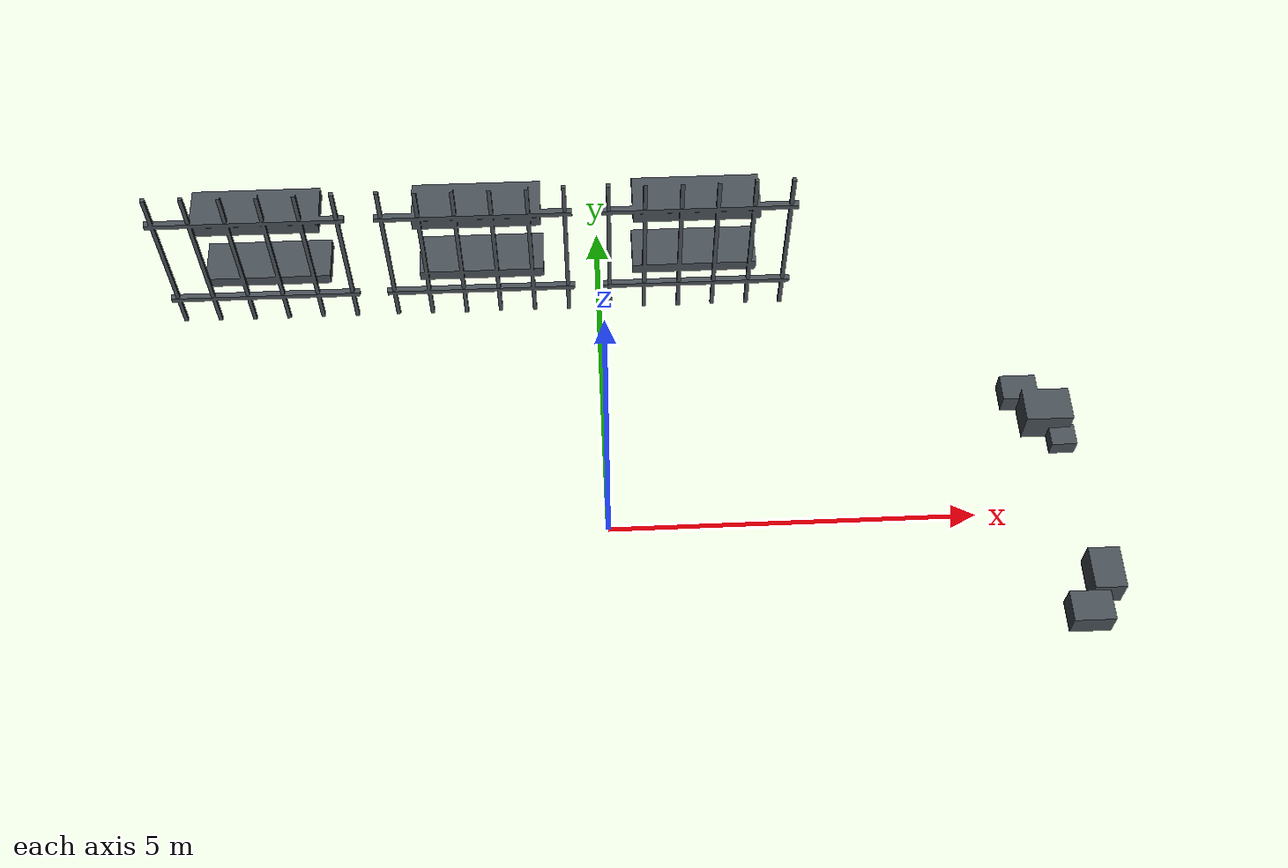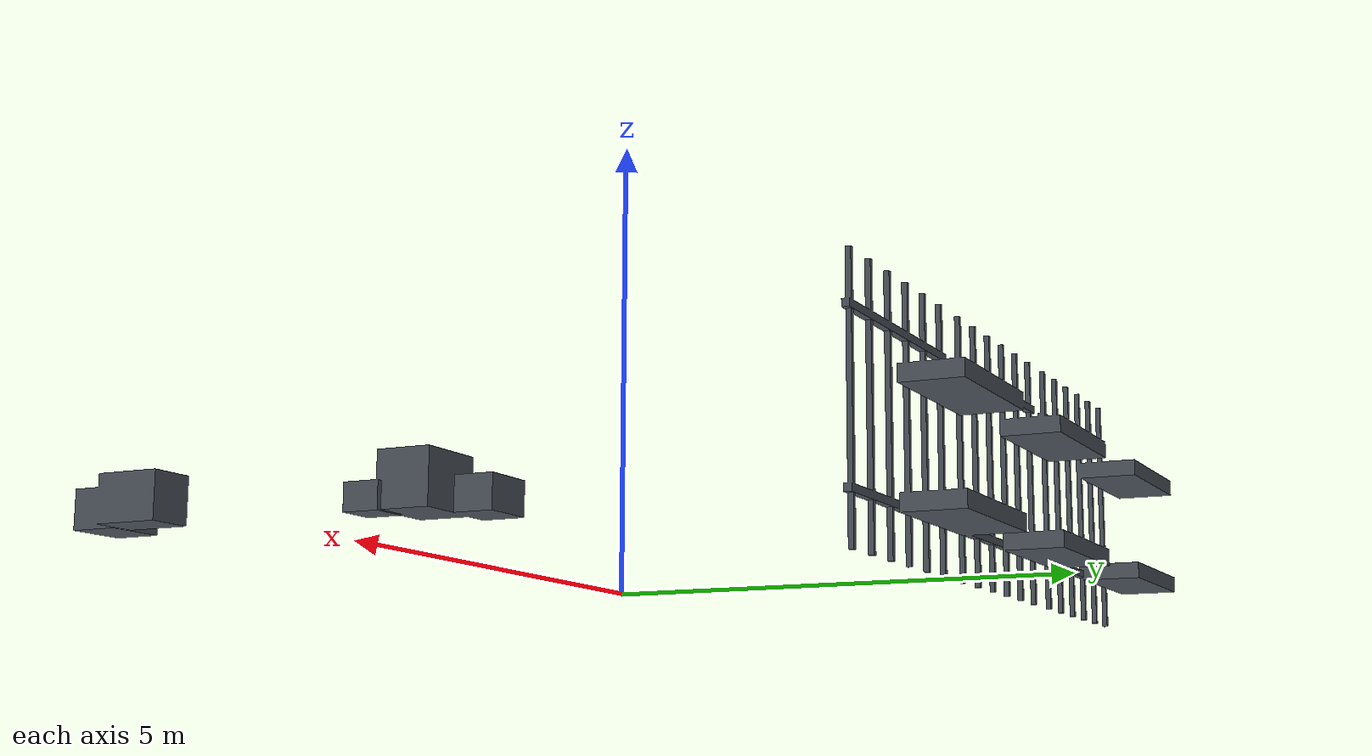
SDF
<?xml version='1.0' encoding='utf-8'?>
<sdf version="1.12">
  <model name="prison_details">
    <static>true</static>
    <link name="props_link">
      <visual name="prison_details_visual">
        <geometry>
          <mesh>
            <uri>prison_details.obj</uri>
          </mesh>
        </geometry>
        <material>
          <ambient>0.28 0.31 0.34 1</ambient>
          <diffuse>0.28 0.31 0.34 1</diffuse>
        </material>
      </visual>
      <collision name="prison_details_collision">
        <geometry>
          <mesh>
            <uri>prison_details.obj</uri>
          </mesh>
        </geometry>
      </collision>
    </link>
  </model>
</sdf>
